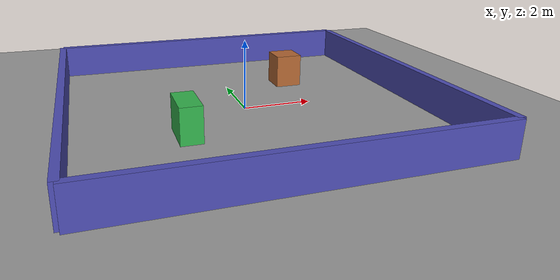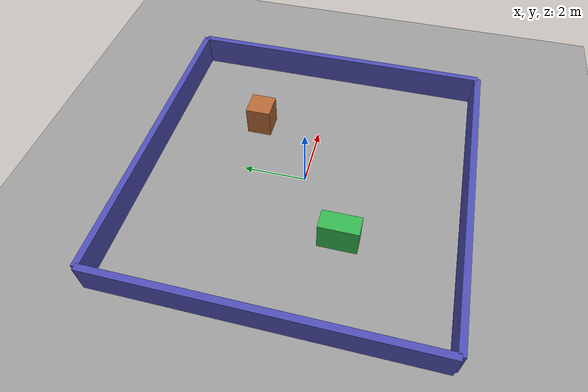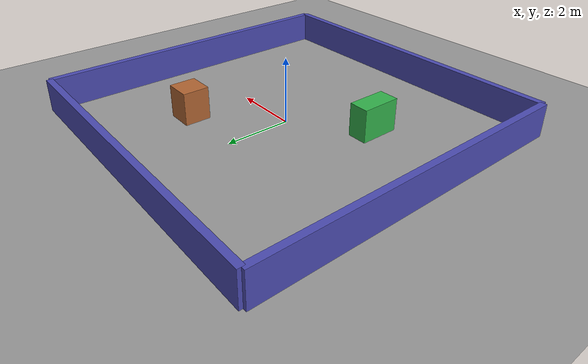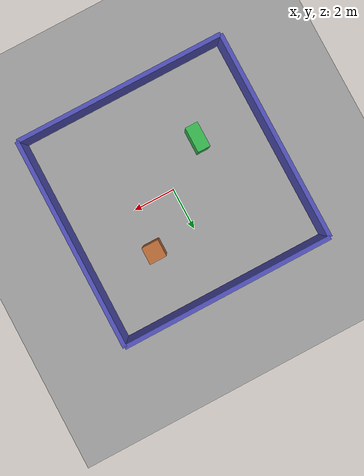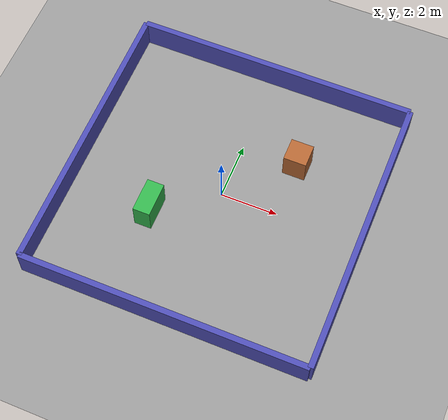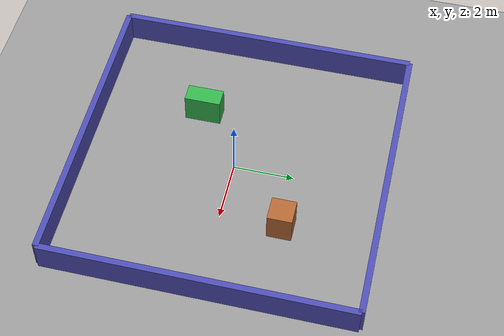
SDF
<?xml version="1.0" ?>
<sdf version="1.10">
  <world name="simple_world">
    <scene>
      <ambient>0.4 0.4 0.4 1</ambient>
      <background>0.7 0.7 0.7 1</background>
    </scene>

    <physics name="1ms" type="ignored">
      <max_step_size>0.001</max_step_size>
      <real_time_factor>1</real_time_factor>
    </physics>

    <plugin filename="gz-sim-physics-system" name="gz::sim::systems::Physics"></plugin>
    <plugin filename="gz-sim-user-commands-system" name="gz::sim::systems::UserCommands"></plugin>
    <plugin filename="gz-sim-scene-broadcaster-system" name="gz::sim::systems::SceneBroadcaster"></plugin>

    <light type="directional" name="sun">
      <pose>0 0 10 0 0 0</pose>
      <intensity>0.8</intensity>
      <cast_shadows>true</cast_shadows>
    </light>

    <model name="ground_plane">
      <static>true</static>
      <link name="link">
        <collision name="collision">
          <geometry>
            <plane><normal>0 0 1</normal><size>40 40</size></plane>
          </geometry>
        </collision>
        <visual name="visual">
          <geometry>
            <plane><normal>0 0 1</normal><size>40 40</size></plane>
          </geometry>
          <material>
            <ambient>0.6 0.6 0.6 1</ambient>
            <diffuse>0.6 0.6 0.6 1</diffuse>
            <specular>0.2 0.2 0.2 1</specular>
          </material>
        </visual>
      </link>
    </model>

    <!-- 围墙：10x10 房间，给 SLAM 提供特征 -->
    <model name="walls">
      <static>true</static>
      <link name="link">
        <collision name="w_n"><pose>0 5 0.5 0 0 0</pose><geometry><box><size>10 0.2 1</size></box></geometry></collision>
        <visual name="vw_n"><pose>0 5 0.5 0 0 0</pose><geometry><box><size>10 0.2 1</size></box></geometry><material><ambient>0.3 0.3 0.7 1</ambient><diffuse>0.3 0.3 0.7 1</diffuse><specular>0.1 0.1 0.1 1</specular></material></visual>
        <collision name="w_s"><pose>0 -5 0.5 0 0 0</pose><geometry><box><size>10 0.2 1</size></box></geometry></collision>
        <visual name="vw_s"><pose>0 -5 0.5 0 0 0</pose><geometry><box><size>10 0.2 1</size></box></geometry><material><ambient>0.3 0.3 0.7 1</ambient><diffuse>0.3 0.3 0.7 1</diffuse><specular>0.1 0.1 0.1 1</specular></material></visual>
        <collision name="w_e"><pose>5 0 0.5 0 0 0</pose><geometry><box><size>0.2 10 1</size></box></geometry></collision>
        <visual name="vw_e"><pose>5 0 0.5 0 0 0</pose><geometry><box><size>0.2 10 1</size></box></geometry><material><ambient>0.3 0.3 0.7 1</ambient><diffuse>0.3 0.3 0.7 1</diffuse><specular>0.1 0.1 0.1 1</specular></material></visual>
        <collision name="w_w"><pose>-5 0 0.5 0 0 0</pose><geometry><box><size>0.2 10 1</size></box></geometry></collision>
        <visual name="vw_w"><pose>-5 0 0.5 0 0 0</pose><geometry><box><size>0.2 10 1</size></box></geometry><material><ambient>0.3 0.3 0.7 1</ambient><diffuse>0.3 0.3 0.7 1</diffuse><specular>0.1 0.1 0.1 1</specular></material></visual>
      </link>
    </model>

    <!-- 几个箱子障碍 -->
    <model name="box1">
      <static>true</static>
      <pose>2 2 0.5 0 0 0</pose>
      <link name="link">
        <collision name="c"><geometry><box><size>0.8 0.8 1</size></box></geometry></collision>
        <visual name="v"><geometry><box><size>0.8 0.8 1</size></box></geometry><material><ambient>0.7 0.4 0.2 1</ambient><diffuse>0.7 0.4 0.2 1</diffuse><specular>0.1 0.1 0.1 1</specular></material></visual>
      </link>
    </model>
    <model name="box2">
      <static>true</static>
      <pose>-2 -1.5 0.5 0 0 0</pose>
      <link name="link">
        <collision name="c"><geometry><box><size>0.6 1.2 1</size></box></geometry></collision>
        <visual name="v"><geometry><box><size>0.6 1.2 1</size></box></geometry><material><ambient>0.2 0.7 0.3 1</ambient><diffuse>0.2 0.7 0.3 1</diffuse><specular>0.1 0.1 0.1 1</specular></material></visual>
      </link>
    </model>

  </world>
</sdf>
